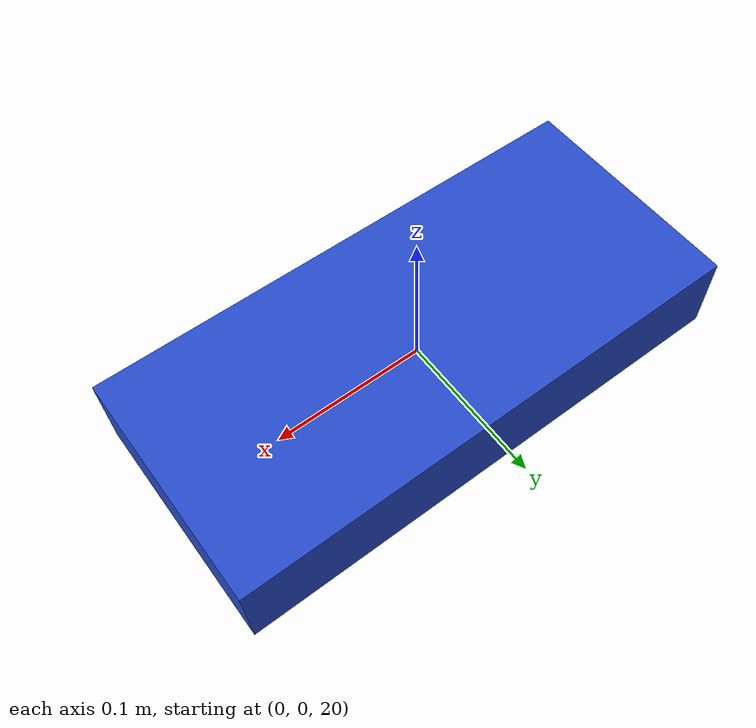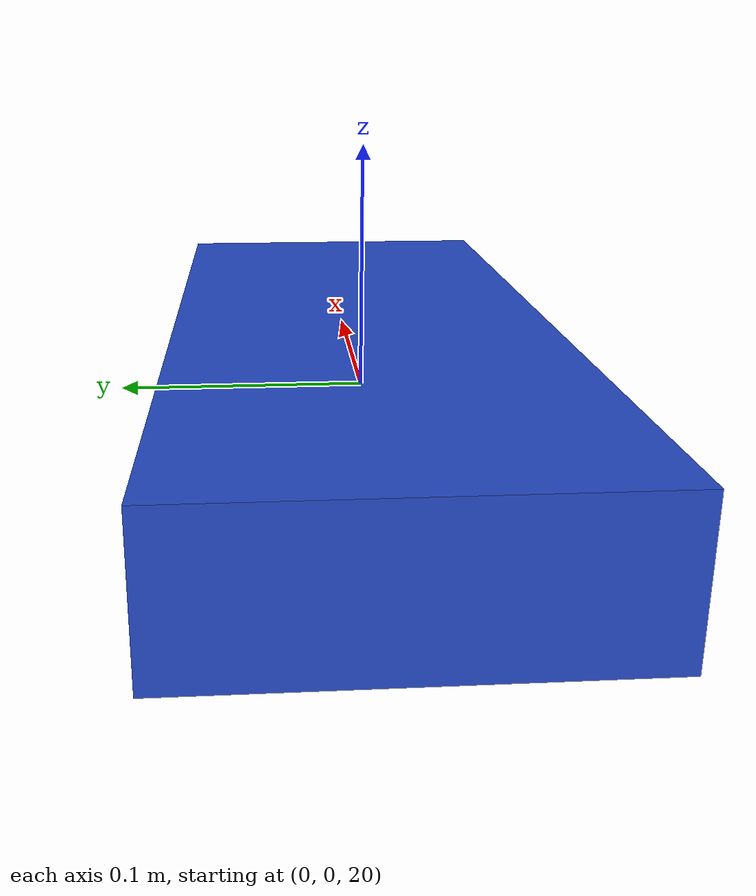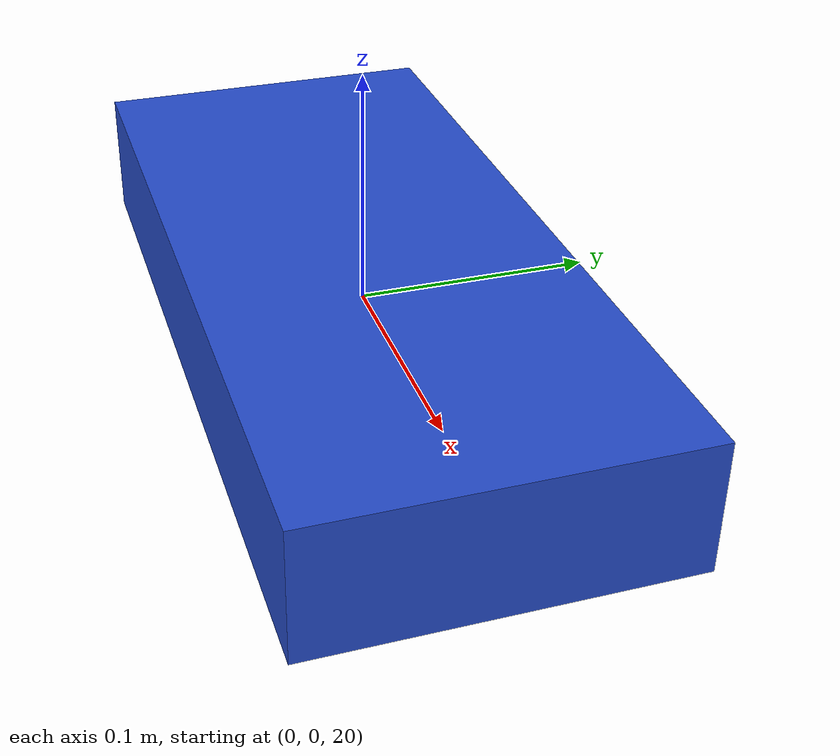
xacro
<?xml version="1.0"?>

<robot name="test" xmlns:xacro="http://www.ros.org/wiki/xacro">

 <xacro:macro name="box_inertial" params="x y z mass">
    <inertial>
      <mass value="${mass}" />
      <origin xyz="0 0 0" />
      <inertia ixx="${0.0833333 * mass * (y*y + z*z)}" ixy="0.0" ixz="0.0"
        iyy="${0.0833333 * mass * (x*x + z*z)}" iyz="0.0"
        izz="${0.0833333 * mass * (x*x + y*y)}" />
    </inertial>
</xacro:macro>

<link name="chassis">
    <visual>
      <geometry>
        <box size="0.34 0.154 0.056"/>
       </geometry>
      <origin rpy="0 0 0" xyz="0 0 20"/>
       <material name="blue"/>
    </visual>
<!--  COLLISION -->
    <collision>
      <geometry>
       <box size="0.34 0.154 0.056"/>

      </geometry>
      <origin rpy="0 0 0" xyz="0 0 20"/>
    </collision>
<!--  INERTIAL -->
   <xacro:box_inertial x="0.34" y="0.154" z="0.056" mass="1.153"/>

  </link>

</robot>
